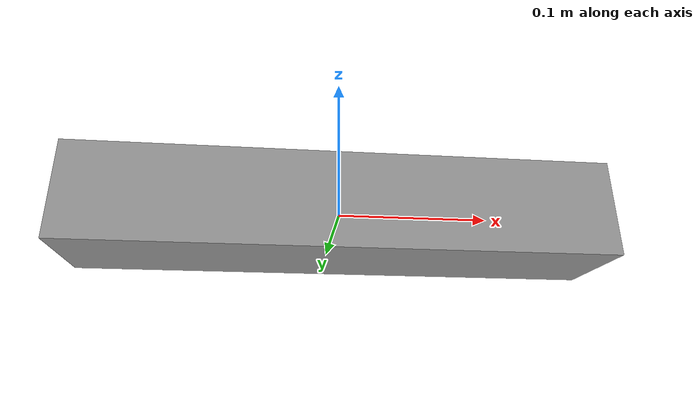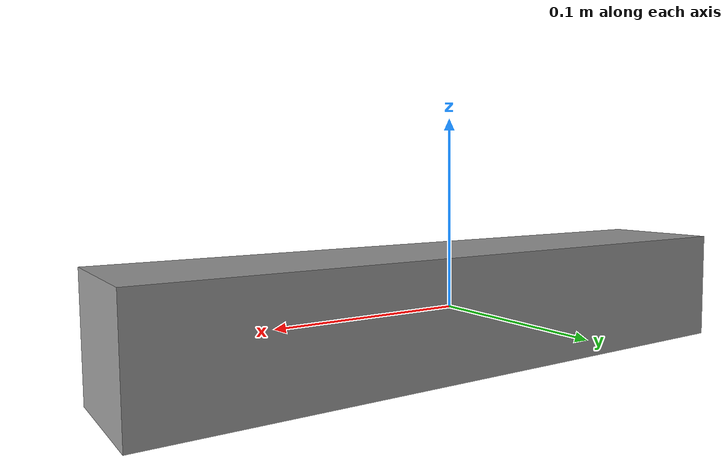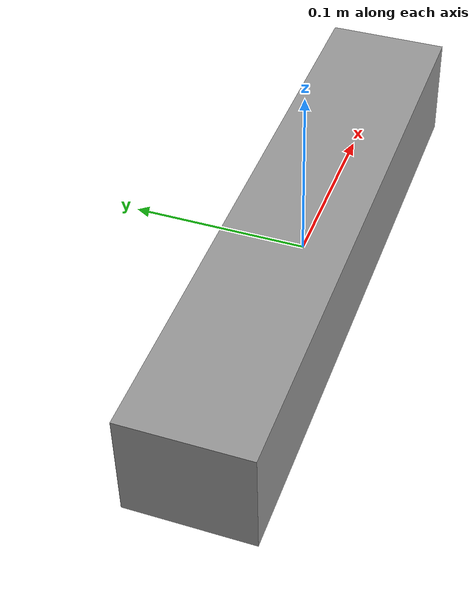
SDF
<?xml version='1.0'?>
<sdf version='1.7'>
  <model name='camera'>
    <link name='link_0'>
      <inertial>
        <mass>0.00154354</mass>
        <inertia>
          <ixx>1.14228e-06</ixx>
          <ixy>0</ixy>
          <ixz>0</ixz>
          <iyy>1.62521e-05</iyy>
          <iyz>0</iyz>
          <izz>1.6393e-05</izz>
        </inertia>
        <pose>0 0 0 0 -0 0</pose>
      </inertial>

      <pose>-0 0 0 0 -0 0</pose>

      <visual name='visual'>
        <pose>0 0 0 0 -0 0</pose>
        <geometry>
          <box>
            <size>0.349938 0.070624 0.062391</size>
          </box>
        </geometry>
        <material>
          <lighting>1</lighting>
          <script>
            <uri>file://media/materials/scripts/gazebo.material</uri>
            <name>Gazebo/Grey</name>
          </script>
          <shader type='pixel'/>
        </material>
        <transparency>0</transparency>
        <cast_shadows>1</cast_shadows>
      </visual>
      <collision name='collision'>
        <laser_retro>0</laser_retro>
        <max_contacts>10</max_contacts>
        <pose>0 0 0 0 -0 0</pose>
        <geometry>
          <box>
            <size>0.349938 0.070624 0.062391</size>
          </box>
        </geometry>
        <surface>
          <friction>
            <ode>
              <mu>1</mu>
              <mu2>1</mu2>
              <fdir1>0 0 0</fdir1>
              <slip1>0</slip1>
              <slip2>0</slip2>
            </ode>
            <torsional>
              <coefficient>1</coefficient>
              <patch_radius>0</patch_radius>
              <surface_radius>0</surface_radius>
              <use_patch_radius>1</use_patch_radius>
              <ode>
                <slip>0</slip>
              </ode>
            </torsional>
          </friction>
          <bounce>
            <restitution_coefficient>0</restitution_coefficient>
            <threshold>1e+06</threshold>
          </bounce>
          <contact>
            <collide_without_contact>0</collide_without_contact>
            <collide_without_contact_bitmask>1</collide_without_contact_bitmask>
            <collide_bitmask>1</collide_bitmask>
            <ode>
              <soft_cfm>0</soft_cfm>
              <soft_erp>0.2</soft_erp>
              <kp>1e+13</kp>
              <kd>1</kd>
              <max_vel>0.01</max_vel>
              <min_depth>0</min_depth>
            </ode>
            <bullet>
              <split_impulse>1</split_impulse>
              <split_impulse_penetration_threshold>-0.01</split_impulse_penetration_threshold>
              <soft_cfm>0</soft_cfm>
              <soft_erp>0.2</soft_erp>
              <kp>1e+13</kp>
              <kd>1</kd>
            </bullet>
          </contact>
        </surface>
      </collision>

      <sensor name='camera' type='camera'>
        <pose> 0 0 0 0 1.57 0</pose>
        <always_on>1</always_on>
        <visualize>1</visualize>
        <update_rate>30</update_rate>
        <camera name='prius_cam'>
          <horizontal_fov>1.0856</horizontal_fov>
          <image>
            <width>1280</width>
            <height>720</height>
            <format>R8G8B8</format>
          </image>
          <clip>
            <near>0.03</near>
            <far>100</far>
          </clip>
          <noise>
            <type>gaussian</type>
            <mean>0</mean>
            <stddev>0.007</stddev>
          </noise>
        </camera>
        <plugin name='camera_driver' filename='libgazebo_ros_camera.so'/>
      </sensor>

    </link>
    <static>1</static>
    <allow_auto_disable>1</allow_auto_disable>
  </model>
</sdf>
